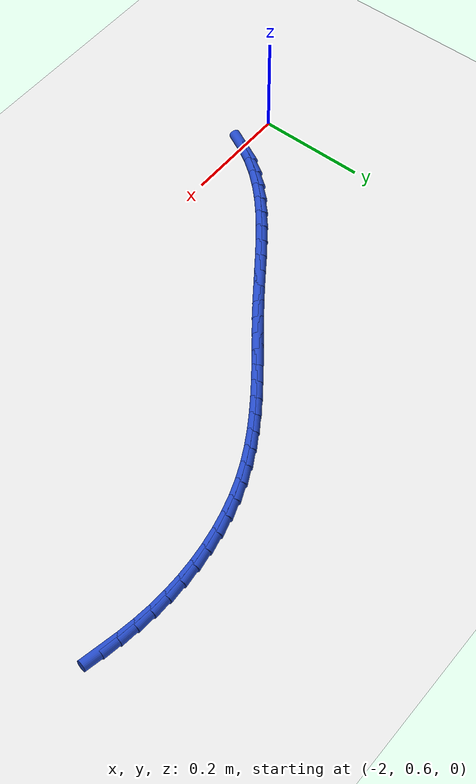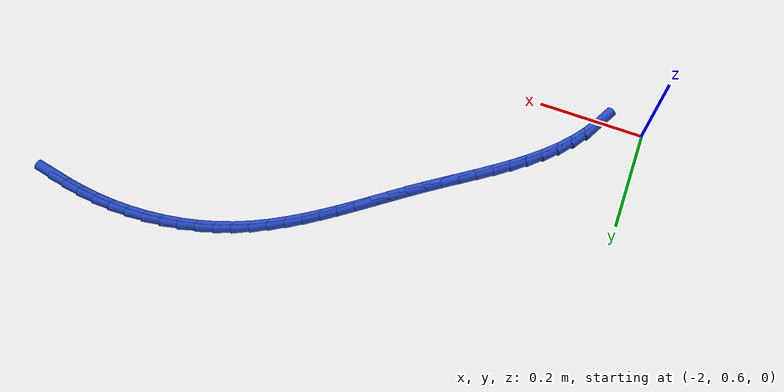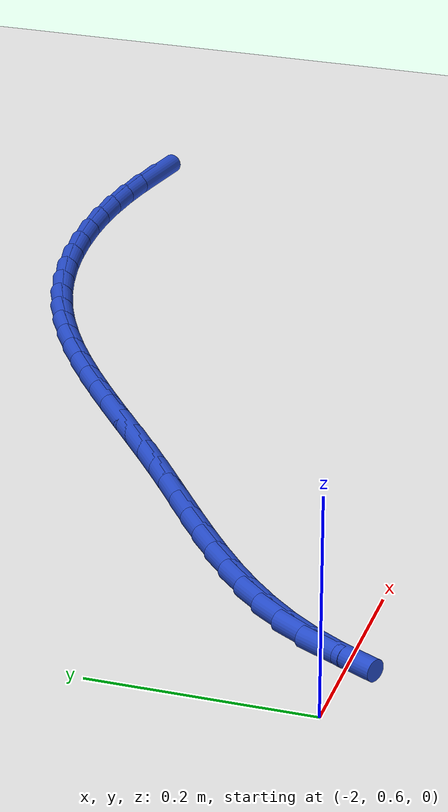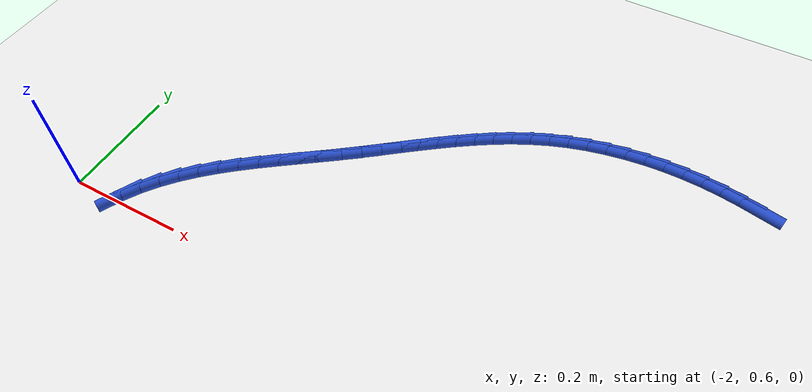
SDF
<sdf version="1.6">
 <world name="default">
  <model name="ground_plane">
   <static>1</static>
   <link name="link">
    <collision name="collision">
     <geometry><plane><normal>0 0 1</normal><size>100 100</size></plane></geometry>
     <surface><friction><ode><mu>100</mu><mu2>50</mu2></ode></friction></surface>
    </collision>
    <visual name="visual">
     <cast_shadows>0</cast_shadows>
     <geometry><plane><normal>0 0 1</normal><size>100 100</size></plane></geometry>
     <material>
      <script><uri>file://media/materials/scripts/gazebo.material</uri><name>Gazebo/WhiteGlow</name></script>
     </material>
    </visual>
   </link>
  </model>
  <model name="line">
   <link name="link_48">
    <pose>-0.9865374103328084 1.0733366339954429 0.01 0 1.57 -0.20546155986984965</pose>
    <collision name="collision">
     <geometry><cylinder><radius>0.01</radius><length>0.08</length></cylinder></geometry>
    </collision>
    <visual name="visual">
     <material>
      <script><name>Gazebo/Blue</name><uri>file://media/materials/scripts/gazebo.material</uri></script>
     </material>
     <geometry><cylinder><radius>0.01</radius><length>0.08</length></cylinder></geometry>
    </visual>
   </link>
   <link name="link_49">
    <pose>-1.01862610209571 1.0800239936322606 0.01 0 1.57 -0.1610225706911706</pose>
    <collision name="collision">
     <geometry><cylinder><radius>0.01</radius><length>0.08</length></cylinder></geometry>
    </collision>
    <visual name="visual">
     <material>
      <script><name>Gazebo/Blue</name><uri>file://media/materials/scripts/gazebo.material</uri></script>
     </material>
     <geometry><cylinder><radius>0.01</radius><length>0.08</length></cylinder></geometry>
    </visual>
   </link>
   <link name="link_50">
    <pose>-1.050996921753564 1.0852819481931602 0.01 0 1.57 -0.11104879064355587</pose>
    <collision name="collision">
     <geometry><cylinder><radius>0.01</radius><length>0.08</length></cylinder></geometry>
    </collision>
    <visual name="visual">
     <material>
      <script><name>Gazebo/Blue</name><uri>file://media/materials/scripts/gazebo.material</uri></script>
     </material>
     <geometry><cylinder><radius>0.01</radius><length>0.08</length></cylinder></geometry>
    </visual>
   </link>
   <link name="link_51">
    <pose>-1.0836944498003471 1.0889279688494455 0.01 0 1.57 -0.056286742615134736</pose>
    <collision name="collision">
     <geometry><cylinder><radius>0.01</radius><length>0.08</length></cylinder></geometry>
    </collision>
    <visual name="visual">
     <material>
      <script><name>Gazebo/Blue</name><uri>file://media/materials/scripts/gazebo.material</uri></script>
     </material>
     <geometry><cylinder><radius>0.01</radius><length>0.08</length></cylinder></geometry>
    </visual>
   </link>
   <link name="link_52">
    <pose>-1.1167486339495993 1.09079044852165 0.01 0 1.57 -0.00036332663223348683</pose>
    <collision name="collision">
     <geometry><cylinder><radius>0.01</radius><length>0.08</length></cylinder></geometry>
    </collision>
    <visual name="visual">
     <material>
      <script><name>Gazebo/Blue</name><uri>file://media/materials/scripts/gazebo.material</uri></script>
     </material>
     <geometry><cylinder><radius>0.01</radius><length>0.08</length></cylinder></geometry>
    </visual>
   </link>
   <link name="link_53">
    <pose>-1.1500490563753827 1.0908025474525143 0.01 0 1.57 0.05530546310357478</pose>
    <collision name="collision">
     <geometry><cylinder><radius>0.01</radius><length>0.08</length></cylinder></geometry>
    </collision>
    <visual name="visual">
     <material>
      <script><name>Gazebo/Blue</name><uri>file://media/materials/scripts/gazebo.material</uri></script>
     </material>
     <geometry><cylinder><radius>0.01</radius><length>0.08</length></cylinder></geometry>
    </visual>
   </link>
   <link name="link_54">
    <pose>-1.1834071156878332 1.0889557812522248 0.01 0 1.57 0.111301697875346</pose>
    <collision name="collision">
     <geometry><cylinder><radius>0.01</radius><length>0.08</length></cylinder></geometry>
    </collision>
    <visual name="visual">
     <material>
      <script><name>Gazebo/Blue</name><uri>file://media/materials/scripts/gazebo.material</uri></script>
     </material>
     <geometry><cylinder><radius>0.01</radius><length>0.08</length></cylinder></geometry>
    </visual>
   </link>
   <link name="link_55">
    <pose>-1.2166333654593129 1.0852422962580313 0.01 0 1.57 0.16821908930473461</pose>
    <collision name="collision">
     <geometry><cylinder><radius>0.01</radius><length>0.08</length></cylinder></geometry>
    </collision>
    <visual name="visual">
     <material>
      <script><name>Gazebo/Blue</name><uri>file://media/materials/scripts/gazebo.material</uri></script>
     </material>
     <geometry><cylinder><radius>0.01</radius><length>0.08</length></cylinder></geometry>
    </visual>
   </link>
   <link name="link_56">
    <pose>-1.2495383592621863 1.079654238807185 0.01 0 1.57 0.22664871904488787</pose>
    <collision name="collision">
     <geometry><cylinder><radius>0.01</radius><length>0.08</length></cylinder></geometry>
    </collision>
    <visual name="visual">
     <material>
      <script><name>Gazebo/Blue</name><uri>file://media/materials/scripts/gazebo.material</uri></script>
     </material>
     <geometry><cylinder><radius>0.01</radius><length>0.08</length></cylinder></geometry>
    </visual>
   </link>
   <link name="link_57">
    <pose>-1.2819326506688156 1.0721837552369355 0.01 0 1.57 0.2871823484778541</pose>
    <collision name="collision">
     <geometry><cylinder><radius>0.01</radius><length>0.08</length></cylinder></geometry>
    </collision>
    <visual name="visual">
     <material>
      <script><name>Gazebo/Blue</name><uri>file://media/materials/scripts/gazebo.material</uri></script>
     </material>
     <geometry><cylinder><radius>0.01</radius><length>0.08</length></cylinder></geometry>
    </visual>
   </link>
   <link name="link_58">
    <pose>-1.3136267932515628 1.062822991884533 0.01 0 1.57 0.35038851176006075</pose>
    <collision name="collision">
     <geometry><cylinder><radius>0.01</radius><length>0.08</length></cylinder></geometry>
    </collision>
    <visual name="visual">
     <material>
      <script><name>Gazebo/Blue</name><uri>file://media/materials/scripts/gazebo.material</uri></script>
     </material>
     <geometry><cylinder><radius>0.01</radius><length>0.08</length></cylinder></geometry>
    </visual>
   </link>
   <link name="link_59">
    <pose>-1.3444321146868494 1.0515646068978108 0.01 0 1.57 0.41373231284792794</pose>
    <collision name="collision">
     <geometry><cylinder><radius>0.01</radius><length>0.08</length></cylinder></geometry>
    </collision>
    <visual name="visual">
     <material>
      <script><name>Gazebo/Blue</name><uri>file://media/materials/scripts/gazebo.material</uri></script>
     </material>
     <geometry><cylinder><radius>0.01</radius><length>0.08</length></cylinder></geometry>
    </visual>
   </link>
   <link name="link_60">
    <pose>-1.3742604467231 1.0384677082089453 0.01 0 1.57 0.4709040510355935</pose>
    <collision name="collision">
     <geometry><cylinder><radius>0.01</radius><length>0.08</length></cylinder></geometry>
    </collision>
    <visual name="visual">
     <material>
      <script><name>Gazebo/Blue</name><uri>file://media/materials/scripts/gazebo.material</uri></script>
     </material>
     <geometry><cylinder><radius>0.01</radius><length>0.08</length></cylinder></geometry>
    </visual>
   </link>
   <link name="link_61">
    <pose>-1.4032226050677525 1.0237229649983328 0.01 0 1.57 0.5206110235754046</pose>
    <collision name="collision">
     <geometry><cylinder><radius>0.01</radius><length>0.08</length></cylinder></geometry>
    </collision>
    <visual name="visual">
     <material>
      <script><name>Gazebo/Blue</name><uri>file://media/materials/scripts/gazebo.material</uri></script>
     </material>
     <geometry><cylinder><radius>0.01</radius><length>0.08</length></cylinder></geometry>
    </visual>
   </link>
   <link name="link_62">
    <pose>-1.4314528054058533 1.0075365176947946 0.01 0 1.57 0.5625380260821675</pose>
    <collision name="collision">
     <geometry><cylinder><radius>0.01</radius><length>0.08</length></cylinder></geometry>
    </collision>
    <visual name="visual">
     <material>
      <script><name>Gazebo/Blue</name><uri>file://media/materials/scripts/gazebo.material</uri></script>
     </material>
     <geometry><cylinder><radius>0.01</radius><length>0.08</length></cylinder></geometry>
    </visual>
   </link>
   <link name="link_63">
    <pose>-1.4590852634224485 0.990114506727153 0.01 0 1.57 0.5965864881876981</pose>
    <collision name="collision">
     <geometry><cylinder><radius>0.01</radius><length>0.08</length></cylinder></geometry>
    </collision>
    <visual name="visual">
     <material>
      <script><name>Gazebo/Blue</name><uri>file://media/materials/scripts/gazebo.material</uri></script>
     </material>
     <geometry><cylinder><radius>0.01</radius><length>0.08</length></cylinder></geometry>
    </visual>
   </link>
   <link name="link_64">
    <pose>-1.4862541948025845 0.9716630725242286 0.01 0 1.57 0.622799751536837</pose>
    <collision name="collision">
     <geometry><cylinder><radius>0.01</radius><length>0.08</length></cylinder></geometry>
    </collision>
    <visual name="visual">
     <material>
      <script><name>Gazebo/Blue</name><uri>file://media/materials/scripts/gazebo.material</uri></script>
     </material>
     <geometry><cylinder><radius>0.01</radius><length>0.08</length></cylinder></geometry>
    </visual>
   </link>
   <link name="link_65">
    <pose>-1.5130938152313071 0.9523883555148434 0.01 0 1.57 0.6412988276187696</pose>
    <collision name="collision">
     <geometry><cylinder><radius>0.01</radius><length>0.08</length></cylinder></geometry>
    </collision>
    <visual name="visual">
     <material>
      <script><name>Gazebo/Blue</name><uri>file://media/materials/scripts/gazebo.material</uri></script>
     </material>
     <geometry><cylinder><radius>0.01</radius><length>0.08</length></cylinder></geometry>
    </visual>
   </link>
   <link name="link_66">
    <pose>-1.5397383403936626 0.9324964961278184 0.01 0 1.57 0.652233731516325</pose>
    <collision name="collision">
     <geometry><cylinder><radius>0.01</radius><length>0.08</length></cylinder></geometry>
    </collision>
    <visual name="visual">
     <material>
      <script><name>Gazebo/Blue</name><uri>file://media/materials/scripts/gazebo.material</uri></script>
     </material>
     <geometry><cylinder><radius>0.01</radius><length>0.08</length></cylinder></geometry>
    </visual>
   </link>
   <link name="link_67">
    <pose>-1.5663219859746977 0.9121936347919757 0.01 0 1.57 0.6557510636616736</pose>
    <collision name="collision">
     <geometry><cylinder><radius>0.01</radius><length>0.08</length></cylinder></geometry>
    </collision>
    <visual name="visual">
     <material>
      <script><name>Gazebo/Blue</name><uri>file://media/materials/scripts/gazebo.material</uri></script>
     </material>
     <geometry><cylinder><radius>0.01</radius><length>0.08</length></cylinder></geometry>
    </visual>
   </link>
   <link name="link_68">
    <pose>-1.5929789676594572 0.8916859119361358 0.01 0 1.57 0.6519764464329595</pose>
    <collision name="collision">
     <geometry><cylinder><radius>0.01</radius><length>0.08</length></cylinder></geometry>
    </collision>
    <visual name="visual">
     <material>
      <script><name>Gazebo/Blue</name><uri>file://media/materials/scripts/gazebo.material</uri></script>
     </material>
     <geometry><cylinder><radius>0.01</radius><length>0.08</length></cylinder></geometry>
    </visual>
   </link>
   <link name="link_69">
    <pose>-1.619843501132989 0.8711794679891214 0.01 0 1.57 0.6410099792536738</pose>
    <collision name="collision">
     <geometry><cylinder><radius>0.01</radius><length>0.08</length></cylinder></geometry>
    </collision>
    <visual name="visual">
     <material>
      <script><name>Gazebo/Blue</name><uri>file://media/materials/scripts/gazebo.material</uri></script>
     </material>
     <geometry><cylinder><radius>0.01</radius><length>0.08</length></cylinder></geometry>
    </visual>
   </link>
   <link name="link_70">
    <pose>-1.6470498015977113 0.8508804429037415 0.01 0 1.57 0.6259357863748021</pose>
    <collision name="collision">
     <geometry><cylinder><radius>0.01</radius><length>0.08</length></cylinder></geometry>
    </collision>
    <visual name="visual">
     <material>
      <script><name>Gazebo/Blue</name><uri>file://media/materials/scripts/gazebo.material</uri></script>
     </material>
     <geometry><cylinder><radius>0.01</radius><length>0.08</length></cylinder></geometry>
    </visual>
   </link>
   <link name="link_71">
    <pose>-1.6746581984394668 0.8309221035898864 0.01 0 1.57 0.6180657429416391</pose>
    <collision name="collision">
     <geometry><cylinder><radius>0.01</radius><length>0.08</length></cylinder></geometry>
    </collision>
    <visual name="visual">
     <material>
      <script><name>Gazebo/Blue</name><uri>file://media/materials/scripts/gazebo.material</uri></script>
     </material>
     <geometry><cylinder><radius>0.01</radius><length>0.08</length></cylinder></geometry>
    </visual>
   </link>
   <link name="link_72">
    <pose>-1.702449886965722 0.8111624090483415 0.01 0 1.57 0.619994296477718</pose>
    <collision name="collision">
     <geometry><cylinder><radius>0.01</radius><length>0.08</length></cylinder></geometry>
    </collision>
    <visual name="visual">
     <material>
      <script><name>Gazebo/Blue</name><uri>file://media/materials/scripts/gazebo.material</uri></script>
     </material>
     <geometry><cylinder><radius>0.01</radius><length>0.08</length></cylinder></geometry>
    </visual>
   </link>
   <link name="link_73">
    <pose>-1.7301401558923732 0.791394315088499 0.01 0 1.57 0.6318075056939941</pose>
    <collision name="collision">
     <geometry><cylinder><radius>0.01</radius><length>0.08</length></cylinder></geometry>
    </collision>
    <visual name="visual">
     <material>
      <script><name>Gazebo/Blue</name><uri>file://media/materials/scripts/gazebo.material</uri></script>
     </material>
     <geometry><cylinder><radius>0.01</radius><length>0.08</length></cylinder></geometry>
    </visual>
   </link>
   <link name="link_74">
    <pose>-1.7574442939353165 0.7714107775197508 0.01 0 1.57 0.6537791426937363</pose>
    <collision name="collision">
     <geometry><cylinder><radius>0.01</radius><length>0.08</length></cylinder></geometry>
    </collision>
    <visual name="visual">
     <material>
      <script><name>Gazebo/Blue</name><uri>file://media/materials/scripts/gazebo.material</uri></script>
     </material>
     <geometry><cylinder><radius>0.01</radius><length>0.08</length></cylinder></geometry>
    </visual>
   </link>
   <link name="link_75">
    <pose>-1.7840775898104484 0.7510047521514892 0.01 0 1.57 0.6863472820540318</pose>
    <collision name="collision">
     <geometry><cylinder><radius>0.01</radius><length>0.08</length></cylinder></geometry>
    </collision>
    <visual name="visual">
     <material>
      <script><name>Gazebo/Blue</name><uri>file://media/materials/scripts/gazebo.material</uri></script>
     </material>
     <geometry><cylinder><radius>0.01</radius><length>0.08</length></cylinder></geometry>
    </visual>
   </link>
   <link name="link_76">
    <pose>-1.8097553322336635 0.7299691947931057 0.01 0 1.57 0.7300592209325637</pose>
    <collision name="collision">
     <geometry><cylinder><radius>0.01</radius><length>0.08</length></cylinder></geometry>
    </collision>
    <visual name="visual">
     <material>
      <script><name>Gazebo/Blue</name><uri>file://media/materials/scripts/gazebo.material</uri></script>
     </material>
     <geometry><cylinder><radius>0.01</radius><length>0.08</length></cylinder></geometry>
    </visual>
   </link>
   <link name="link_77">
    <pose>-1.8341928099208595 0.7080970612539926 0.01 0 1.57 0.7854691292968103</pose>
    <collision name="collision">
     <geometry><cylinder><radius>0.01</radius><length>0.08</length></cylinder></geometry>
    </collision>
    <visual name="visual">
     <material>
      <script><name>Gazebo/Blue</name><uri>file://media/materials/scripts/gazebo.material</uri></script>
     </material>
     <geometry><cylinder><radius>0.01</radius><length>0.08</length></cylinder></geometry>
    </visual>
   </link>
   <link name="link_78">
    <pose>-1.8571053115879317 0.6851813073435418 0.01 0 1.57 0.8529703243480233</pose>
    <collision name="collision">
     <geometry><cylinder><radius>0.01</radius><length>0.08</length></cylinder></geometry>
    </collision>
    <visual name="visual">
     <material>
      <script><name>Gazebo/Blue</name><uri>file://media/materials/scripts/gazebo.material</uri></script>
     </material>
     <geometry><cylinder><radius>0.01</radius><length>0.08</length></cylinder></geometry>
    </visual>
   </link>
   <link name="link_79">
    <pose>-1.878208125950777 0.6610148888711456 0.01 0 1.57 0.9325528760691619</pose>
    <collision name="collision">
     <geometry><cylinder><radius>0.01</radius><length>0.08</length></cylinder></geometry>
    </collision>
    <visual name="visual">
     <material>
      <script><name>Gazebo/Blue</name><uri>file://media/materials/scripts/gazebo.material</uri></script>
     </material>
     <geometry><cylinder><radius>0.01</radius><length>0.08</length></cylinder></geometry>
    </visual>
   </link>
   <link name="link_80">
    <pose>-1.8972165417252909 0.6353907616461953 0.01 0 1.57 1.0213455620383354</pose>
    <collision name="collision">
     <geometry><cylinder><radius>0.01</radius><length>0.08</length></cylinder></geometry>
    </collision>
    <visual name="visual">
     <material>
      <script><name>Gazebo/Blue</name><uri>file://media/materials/scripts/gazebo.material</uri></script>
     </material>
     <geometry><cylinder><radius>0.01</radius><length>0.08</length></cylinder></geometry>
    </visual>
   </link>
   <link name="link_81">
    <pose>-1.9139004573441047 0.6081450333470939 0.01 0 1.57 1.1046287217991833</pose>
    <collision name="collision">
     <geometry><cylinder><radius>0.01</radius><length>0.08</length></cylinder></geometry>
    </collision>
    <visual name="visual">
     <material>
      <script><name>Gazebo/Blue</name><uri>file://media/materials/scripts/gazebo.material</uri></script>
     </material>
     <geometry><cylinder><radius>0.01</radius><length>0.08</length></cylinder></geometry>
    </visual>
   </link>
  </model>
 </world>
</sdf>
